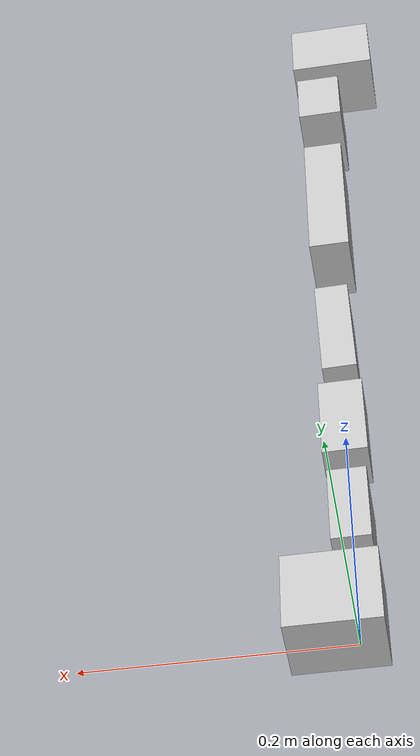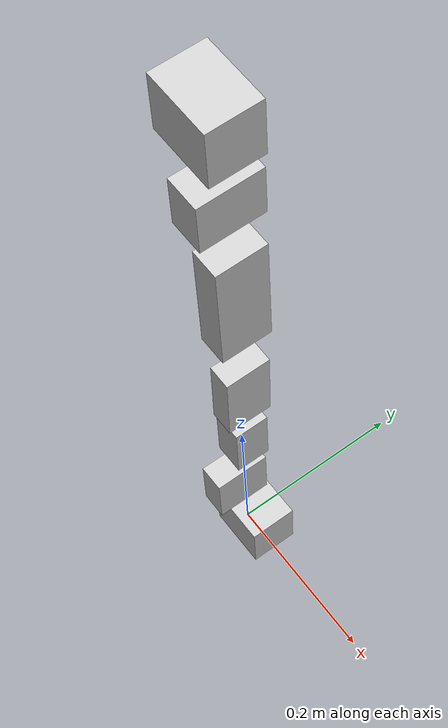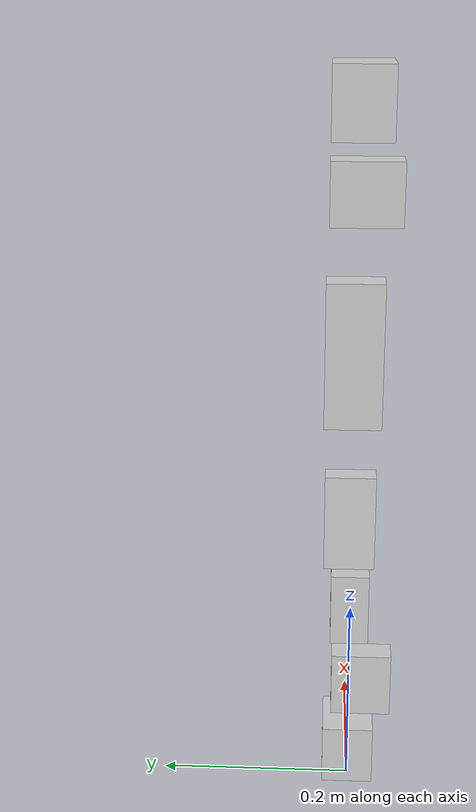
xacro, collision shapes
<?xml version="1.0"?>
<!-- Revolute-Revolute Manipulator -->
<!--
Copied and modified from ROS1 example -
https://github.com/ros-simulation/gazebo_ros_demos/blob/kinetic-devel/rrbot_description/urdf/rrbot.xacro
-->
<robot xmlns:xacro="http://www.ros.org/wiki/xacro" name="robot2_serial">
  <xacro:arg name="prefix" default="" />

  <xacro:include filename="$(find escalador_description_serial_2)/urdf/escalador_serial_2_description.urdf.xacro" />
  <xacro:include filename="$(find escalador_description_serial_2)/urdf/escalador_serial_2_ros2_control.xacro" />

  <link name="odom2"/>

  <xacro:robot2 parent="odom2" prefix="$(arg prefix)">
    <origin xyz="0 0 0" rpy="0 0 0" />
  </xacro:robot2>

  <xacro:robot2_ros2_control name ="robot2ctr" prefix="$(arg prefix)" />
</robot>

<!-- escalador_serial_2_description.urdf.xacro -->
<robot xmlns:xacro="http://www.ros.org/wiki/xacro">

  <xacro:macro name="robot2" params="parent prefix *origin">
    <joint name="${prefix}base_joint" type="fixed">
    <xacro:insert_block name="origin" />
    <parent link="${parent}"/>
    <child link="${prefix}LINK_7" />
  </joint>

  <link name="${prefix}end-effector"/>
  <link name="${prefix}end-dummy"/>
  <joint name="dummy_joint" type="fixed">
    <origin rpy="0.0 -3.14 0.0" xyz="0.0 0.0 0.000"/>
    <parent link="${prefix}end-effector"/>
    <child link="${prefix}end-dummy"/>
  </joint>

  <joint name="end_joint" type="fixed">
    <origin rpy="0.0 0.0 0.0" xyz="0.0 0.0 0.07100"/>
    <parent link="${prefix}LINK_1"/>
    <child link="${prefix}end-effector"/>
  </joint>
 <joint name="J1" type="revolute">
    <limit lower="-6.28000" upper="6.28000" effort="0.00000" velocity="0.00000"/>
    <origin rpy="1.57080 -0.00000 0.00000" xyz="0.00000 -0.10900 0.00000"/>
    <parent link="${prefix}LINK_2"/>
    <child link="${prefix}LINK_1"/>
    <axis xyz="0.00000 0.00000 1.00000"/>
  </joint>
  <joint name="J2" type="revolute">
    <limit lower="-3.14000" upper="3.14000" effort="0.00000" velocity="0.00000"/>
    <origin rpy="0.00000 0.00000 -1.57080" xyz="-0.20000 -0.00000 0.00000"/>
    <parent link="${prefix}LINK_3"/>
    <child link="${prefix}LINK_2"/>
    <axis xyz="0.00000 0.00000 1.00000"/>
  </joint>
  <joint name="J3" type="revolute">
    <limit lower="-6.28000" upper="6.28000" effort="0.00000" velocity="0.00000"/>
    <origin rpy="-3.00824 1.57080 1.70415" xyz="-0.00000 -0.00000 0.13800"/>
    <parent link="${prefix}LINK_4"/>
    <child link="${prefix}LINK_3"/>
    <axis xyz="0.00000 0.00000 1.00000"/>
  </joint>
  <joint name="J4" type="revolute">
    <limit lower="-3.14000" upper="3.14000" effort="0.00000" velocity="0.00000"/>
    <origin rpy="-1.57080 0.00000 0.00000" xyz="0.00000 0.06200 0.00000"/>
    <parent link="${prefix}LINK_5"/>
    <child link="${prefix}LINK_4"/>
    <axis xyz="0.00000 0.00000 1.00000"/>
  </joint>
  <joint name="J5" type="revolute">
    <limit lower="-3.14000" upper="3.14000" effort="0.00000" velocity="0.00000"/>
    <origin rpy="1.57080 -0.00000 -0.00000" xyz="-0.00000 -0.00000 0.10900"/>
    <parent link="${prefix}LINK_6"/>
    <child link="${prefix}LINK_5"/>
    <axis xyz="0.00000 0.00000 1.00000"/>
  </joint>
  <joint name="J6" type="revolute">
    <limit lower="-6.28000" upper="6.28000" effort="0.00000" velocity="0.00000"/>
    <origin rpy="-0.00000 0.00000 -3.14159" xyz="-0.00000 -0.00000 0.07100"/>
    <parent link="${prefix}LINK_7"/>
    <child link="${prefix}LINK_6"/>
    <axis xyz="0.00000 0.00000 1.00000"/>
  </joint>
  <link name="${prefix}LINK_1">
    <collision name="LINK_1_collision">
      <origin rpy="-3.14159 0.00000 3.14159" xyz="-0.01529 -0.00000 0.03467"/>
      <geometry>
        <box size="0.07660 0.05818 0.06860"/>
      </geometry>
    </collision>
    <inertial>
      <inertia ixx="0.00065" ixy="0.00000" ixz="0.00008" iyy="0.00105" iyz="0.00000" izz="0.00081"/>
      <origin rpy="0.00000 0.00000 0.00000" xyz="-0.00889 0.00002 0.04189"/>
      <mass value="0.47000"/>
    </inertial>
    <visual name="LINK_1_visual">
      <origin rpy="-3.14159 0.00000 -3.14159" xyz="0.00000 -0.00000 0.00000"/>
      <material name="SILVER"/>
      <geometry>
        <mesh filename="file://$(find escalador_description_serial_2)/meshes/pata_1.dae" scale="0.00100 0.00100 0.00100"/>
      </geometry>
    </visual>
  </link>
  <link name="${prefix}LINK_2">
    <collision name="LINK_2_collision">
      <origin rpy="-0.00000 0.00000 0.00000" xyz="0.00000 -0.05718 -0.00606"/>
      <geometry>
        <box size="0.03961 0.06205 0.07038"/>
      </geometry>
    </collision>
    <inertial>
      <inertia ixx="0.00163" ixy="0.00000" ixz="0.00000" iyy="0.00131" iyz="-0.00016" izz="0.00057"/>
      <origin rpy="0.00000 0.00000 0.00000" xyz="-0.00000 -0.05421 -0.00420"/>
      <mass value="0.47000"/>
    </inertial>
    <visual name="LINK_2_visual">
      <origin rpy="-0.00000 -0.00000 0.00000" xyz="-0.00000 -0.00000 -0.00000"/>
      <material name="ROBO"/>
      <geometry>
        <mesh filename="file://$(find escalador_description_serial_2)/meshes/link_1_5.073.dae" scale="0.00100 0.00100 0.00100"/>
      </geometry>
    </visual>
  </link>
  <link name="${prefix}LINK_3">
    <collision name="LINK_3_collision">
      <origin rpy="-0.00000 0.00000 -1.57266" xyz="-0.09827 0.00013 0.00235"/>
      <geometry>
        <box size="0.03412 0.14763 0.05773"/>
      </geometry>
    </collision>
    <inertial>
      <inertia ixx="0.00675" ixy="0.00000" ixz="-0.00001" iyy="0.00674" iyz="0.00009" izz="0.00034"/>
      <origin rpy="0.00000 0.00000 0.00000" xyz="-0.09288 -0.00001 0.00117"/>
      <mass value="0.47000"/>
    </inertial>
    <visual name="LINK_3_visual">
      <origin rpy="0.00000 0.00000 -1.04791" xyz="0.00000 -0.00000 -0.00000"/>
      <material name="SILVER"/>
      <geometry>
        <mesh filename="file://$(find escalador_description_serial_2)/meshes/link_2.dae" scale="0.00100 0.00100 0.00100"/>
      </geometry>
    </visual>
  </link>
  <link name="${prefix}LINK_4">
    <collision name="LINK_4_collision">
      <origin rpy="1.57080 -0.02402 -0.00000" xyz="-0.00013 -0.00292 0.05933"/>
      <geometry>
        <box size="0.02774 0.09960 0.05199"/>
      </geometry>
    </collision>
    <inertial>
      <inertia ixx="0.00250" ixy="0.00000" ixz="-0.00000" iyy="0.00216" iyz="0.00028" izz="0.00058"/>
      <origin rpy="0.00000 0.00000 0.00000" xyz="-0.00009 0.00263 0.06197"/>
      <mass value="0.47000"/>
    </inertial>
    <visual name="LINK_4_visual">
      <origin rpy="1.57080 0.52360 0.00000" xyz="-0.00000 0.00000 -0.00000"/>
      <material name="SILVER"/>
      <geometry>
        <mesh filename="file://$(find escalador_description_serial_2)/meshes/link_3.076.dae" scale="0.00100 0.00100 0.00100"/>
      </geometry>
    </visual>
  </link>
  <link name="${prefix}LINK_5">
    <collision name="LINK_5_collision">
      <origin rpy="-0.00000 -0.00000 0.00509" xyz="-0.00008 0.02546 0.00105"/>
      <geometry>
        <box size="0.03510 0.07617 0.03941"/>
      </geometry>
    </collision>
    <inertial>
      <inertia ixx="0.00083" ixy="0.00000" ixz="-0.00000" iyy="0.00073" iyz="0.00001" izz="0.00035"/>
      <origin rpy="0.00000 0.00000 0.00000" xyz="-0.00007 0.02556 0.00099"/>
      <mass value="0.47000"/>
    </inertial>
    <visual name="LINK_5_visual">
      <origin rpy="0.00000 0.00000 -0.52299" xyz="0.00000 -0.00000 0.00000"/>
      <material name="ROBO"/>
      <geometry>
        <mesh filename="file://$(find escalador_description_serial_2)/meshes/link_4.003.dae" scale="0.00100 0.00100 0.00100"/>
      </geometry>
    </visual>
  </link>
  <link name="${prefix}LINK_6">
    <collision name="LINK_6_collision">
      <origin rpy="1.57080 -0.00000 -0.00000" xyz="-0.00004 0.01268 0.04535"/>
      <geometry>
        <box size="0.03018 0.06809 0.06256"/>
      </geometry>
    </collision>
    <inertial>
      <inertia ixx="0.00164" ixy="-0.00000" ixz="0.00000" iyy="0.00131" iyz="0.00016" izz="0.00057"/>
      <origin rpy="0.00000 0.00000 0.00000" xyz="-0.00000 0.00420 0.05387"/>
      <mass value="0.47000"/>
    </inertial>
    <visual name="LINK_6_visual">
      <origin rpy="1.57080 -0.00000 -0.00000" xyz="-0.00000 -0.00000 0.00000"/>
      <material name="SILVER"/>
      <geometry>
        <mesh filename="file://$(find escalador_description_serial_2)/meshes/link_1_5.003.dae" scale="0.00100 0.00100 0.00100"/>
      </geometry>
    </visual>
  </link>
  <link name="${prefix}LINK_7">
    <collision name="LINK_7_collision">
      <origin rpy="-0.00000 -0.00000 0.00000" xyz="0.01628 0.00000 0.03221"/>
      <geometry>
        <box size="0.07085 0.05381 0.06345"/>
      </geometry>
    </collision>
    <inertial>
      <inertia ixx="0.00065" ixy="-0.00000" ixz="0.00008" iyy="0.00105" iyz="-0.00000" izz="0.00081"/>
      <origin rpy="0.00000 0.00000 0.00000" xyz="0.00889 0.00002 0.02822"/>
      <mass value="0.47000"/>
    </inertial>
    <visual name="LINK_7_visual">
      <origin rpy="0.00000 -0.00000 0.00000" xyz="0.00000 -0.00000 0.00000"/>
      <material name="ROBO"/>
      <geometry>
        <mesh filename="file://$(find escalador_description_serial_2)/meshes/pata_2.dae" scale="0.00100 0.00100 0.00100"/>
      </geometry>
    </visual>
  </link>

  <material name="ROBO">
    <color rgba="0.80000 0.80000 0.80000 1.00000"/>
  </material>
  <material name="SILVER">
    <color rgba="0.80000 0.80000 0.80000 1.00000"/>
  </material>
  </xacro:macro>
</robot>
